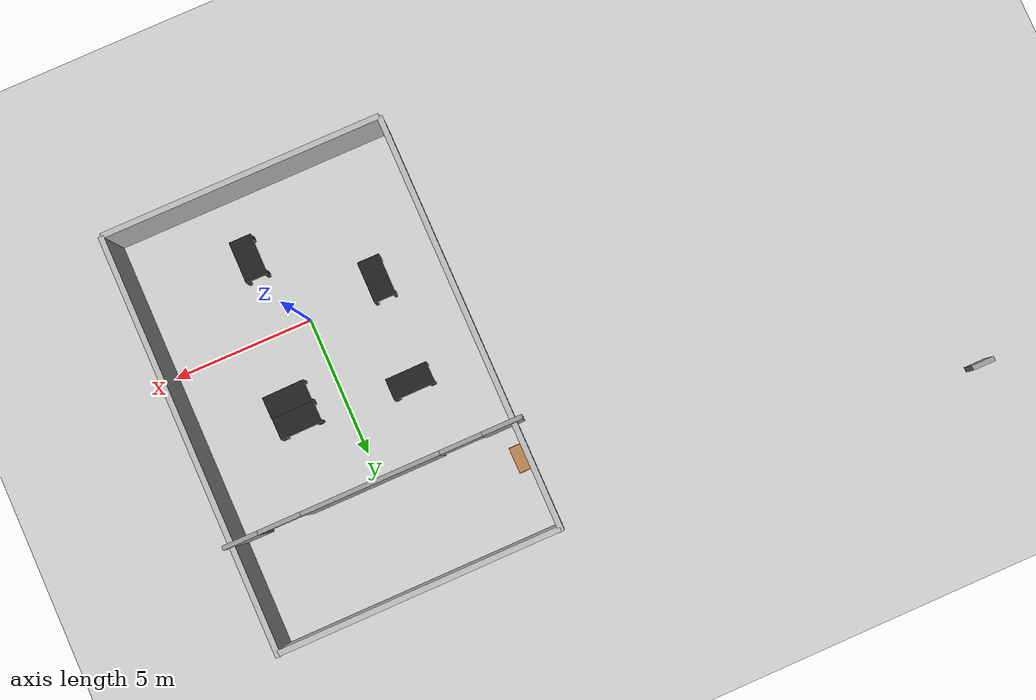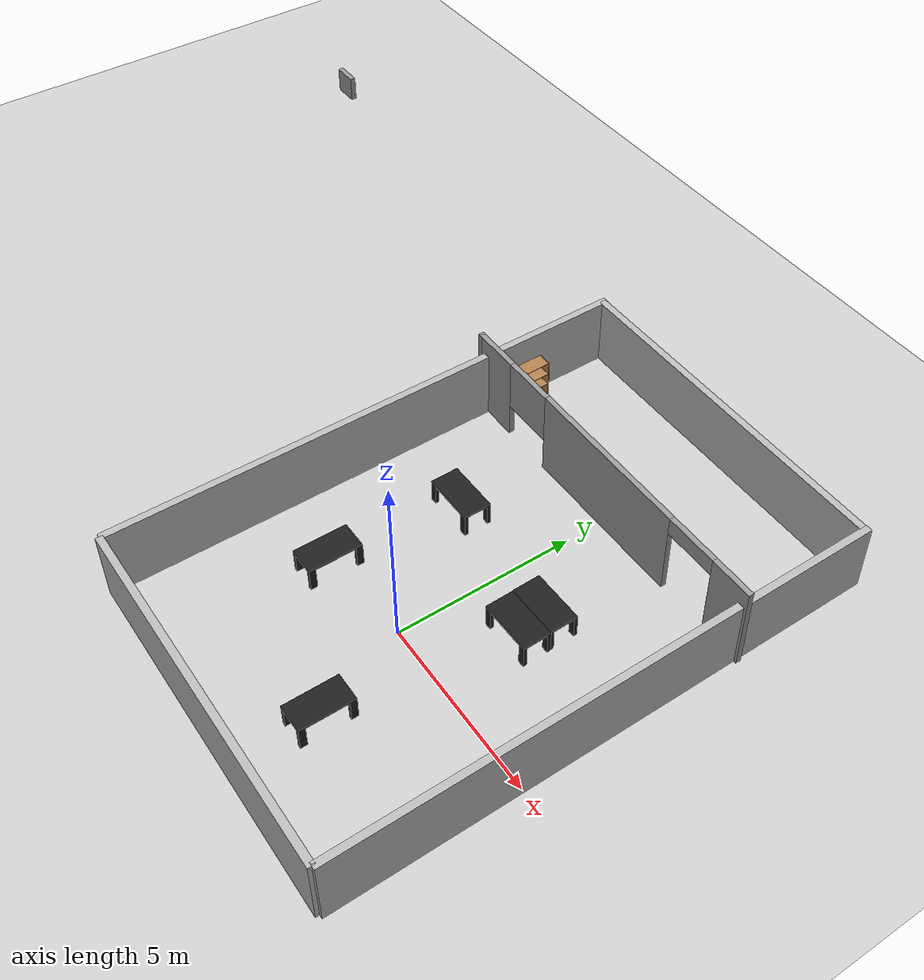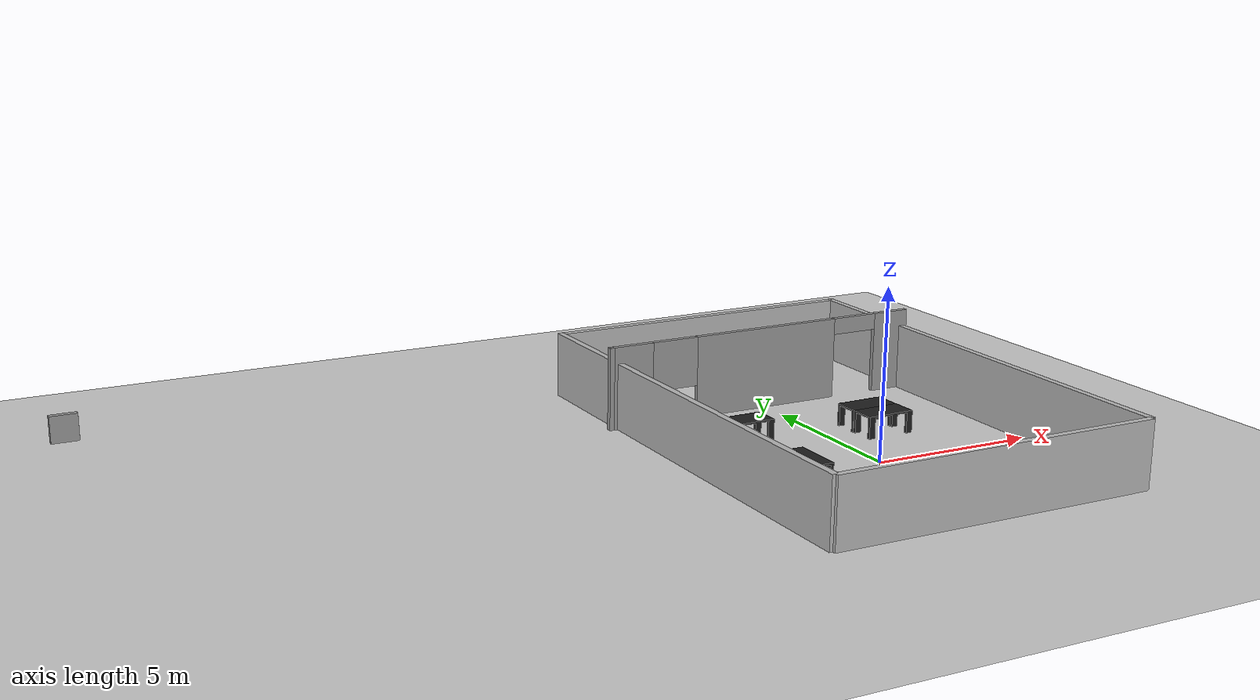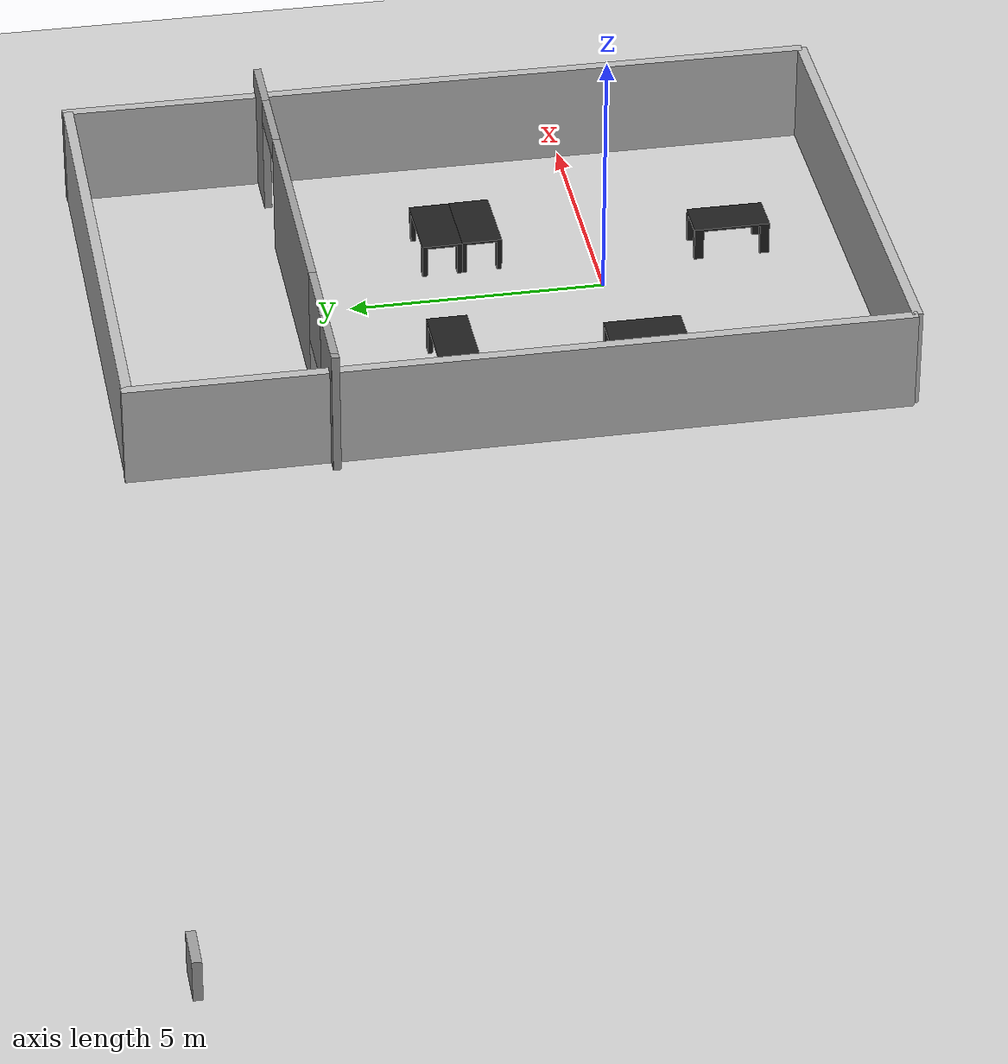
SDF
<sdf version="1.6">
 <world name="default">
  <physics name="default_physics" default="0" type="ode">
   <ode>
    <solver>
     <type>quick</type>
     <iters>20</iters>
     <sor>1</sor>
     <use_dynamic_moi_rescaling>0</use_dynamic_moi_rescaling>
    </solver>
    <constraints>
     <cfm>0</cfm>
     <erp>0.2</erp>
     <contact_max_correcting_vel>100</contact_max_correcting_vel>
     <contact_surface_layer>0</contact_surface_layer>
    </constraints>
   </ode>
   <real_time_update_rate>1000</real_time_update_rate>
   <max_step_size>0.001</max_step_size>
   <real_time_factor>1</real_time_factor>
  </physics>
  <light name="sun" type="directional">
   <pose>0 0 10 0 -0 0</pose>
   <diffuse>0.8 0.8 0.8 1</diffuse>
   <specular>0.1 0.1 0.1 1</specular>
   <attenuation>
    <range>1000</range>
    <constant>0.9</constant>
    <linear>0.01</linear>
    <quadratic>0.001</quadratic>
   </attenuation>
   <direction>-0.5 0.5 -1</direction>
  </light>
  <model name="ground_plane">
   <static>1</static>
   <link name="link">
    <collision name="collision">
     <geometry><plane><normal>0 0 1</normal><size>100 100</size></plane></geometry>
     <surface><friction><ode><mu>100</mu><mu2>50</mu2></ode></friction></surface>
    </collision>
    <visual name="visual">
     <cast_shadows>0</cast_shadows>
     <geometry><plane><normal>0 0 1</normal><size>100 100</size></plane></geometry>
     <material>
      <script><uri>file://media/materials/scripts/gazebo.material</uri><name>Gazebo/Grey</name></script>
     </material>
    </visual>
   </link>
  </model>
  <model name="wall_1_model">
   <pose>0 -5 1 0 -0 0</pose>
   <static>1</static>
   <link name="wall_1_body">
    <inertial>
     <mass>1</mass>
     <inertia><ixx>1</ixx><ixy>0</ixy><ixz>0</ixz><iyy>1</iyy><iyz>0</iyz><izz>1</izz></inertia>
    </inertial>
    <collision name="collision"><geometry><box><size>10 0.2 2</size></box></geometry></collision>
    <visual name="visual"><geometry><box><size>10 0.2 2</size></box></geometry></visual>
   </link>
  </model>
  <model name="wall_2_model">
   <pose>0 9.887 1 0 -0 0</pose>
   <static>1</static>
   <link name="wall_2_body">
    <inertial>
     <mass>1</mass>
     <inertia><ixx>1</ixx><ixy>0</ixy><ixz>0</ixz><iyy>1</iyy><iyz>0</iyz><izz>1</izz></inertia>
    </inertial>
    <collision name="collision"><geometry><box><size>10 0.2 2</size></box></geometry></collision>
    <visual name="visual"><geometry><box><size>10 0.2 2</size></box></geometry></visual>
   </link>
  </model>
  <model name="wall_3_model">
   <pose>-5 2.5 1 0 -0 0</pose>
   <static>1</static>
   <link name="wall_3_body">
    <inertial>
     <mass>1</mass>
     <inertia><ixx>1</ixx><ixy>0</ixy><ixz>0</ixz><iyy>1</iyy><iyz>0</iyz><izz>1</izz></inertia>
    </inertial>
    <collision name="collision"><geometry><box><size>0.2 15 2</size></box></geometry></collision>
    <visual name="visual"><geometry><box><size>0.2 15 2</size></box></geometry></visual>
   </link>
  </model>
  <model name="wall_4_model">
   <pose>5 2.5 1 0 -0 0</pose>
   <static>1</static>
   <link name="wall_4_body">
    <inertial>
     <mass>1</mass>
     <inertia><ixx>1</ixx><ixy>0</ixy><ixz>0</ixz><iyy>1</iyy><iyz>0</iyz><izz>1</izz></inertia>
    </inertial>
    <collision name="collision"><geometry><box><size>0.2 15 2</size></box></geometry></collision>
    <visual name="visual"><geometry><box><size>0.2 15 2</size></box></geometry></visual>
   </link>
  </model>
  <model name="kitchen_table">
   <static>1</static>
   <link name="link">
    <collision name="colision1">
     <geometry>
      <mesh><uri>model://kitchen_table/meshes/kitchen_table1.stl</uri><scale>1 1 1</scale></mesh>
     </geometry>
    </collision>
    <visual name="visual1">
     <geometry>
      <mesh><uri>model://kitchen_table/meshes/kitchen_table1.stl</uri><scale>1 1 1</scale></mesh>
     </geometry>
     <material>
      <script><uri>file://media/materials/scripts/gazebo.material</uri><name>Gazebo/FlatBlack</name></script>
     </material>
    </visual>
    <velocity_decay><linear>0</linear><angular>0</angular></velocity_decay>
   </link>
   <pose>0.620782 -3.43719 0 0 -0 0</pose>
  </model>
  <light name="male03light" type="point">
   <pose>3.6 0.53 1.6 0 -0 0</pose>
   <diffuse>0.5 0.5 0.5 1</diffuse>
   <specular>0.1 0.1 0.1 1</specular>
   <attenuation>
    <range>1</range>
    <linear>0.01</linear>
    <constant>0.3</constant>
    <quadratic>0</quadratic>
   </attenuation>
   <direction>0 0 -1</direction>
   <spot><inner_angle>0.6</inner_angle><outer_angle>0.8</outer_angle><falloff>1.2</falloff></spot>
   <cast_shadows>0</cast_shadows>
  </light>
  <light name="male03bislight" type="point">
   <pose>-2.9 3.7 1.5 0 -0 0</pose>
   <diffuse>0.5 0.5 0.5 1</diffuse>
   <specular>0.1 0.1 0.1 1</specular>
   <attenuation>
    <range>1</range>
    <linear>0.01</linear>
    <constant>0.3</constant>
    <quadratic>0</quadratic>
   </attenuation>
   <direction>0 0 -1</direction>
   <spot><inner_angle>0.6</inner_angle><outer_angle>0.8</outer_angle><falloff>1.2</falloff></spot>
   <cast_shadows>0</cast_shadows>
  </light>
  <gravity>0 0 -9.81</gravity>
  <magnetic_field>6e-06 2.3e-05 -4.2e-05</magnetic_field>
  <atmosphere type="adiabatic"/>
  <scene><ambient>0.4 0.4 0.4 1</ambient><background>0.7 0.7 0.7 1</background><shadows>1</shadows></scene>
  <spherical_coordinates>
   <surface_model>EARTH_WGS84</surface_model>
   <latitude_deg>0</latitude_deg>
   <longitude_deg>0</longitude_deg>
   <elevation>0</elevation>
   <heading_deg>0</heading_deg>
  </spherical_coordinates>
  <model name="kitchen_table_clone">
   <static>1</static>
   <link name="link">
    <collision name="colision1">
     <geometry>
      <mesh><uri>model://kitchen_table/meshes/kitchen_table1.stl</uri><scale>1 1 1</scale></mesh>
     </geometry>
    </collision>
    <visual name="visual1">
     <geometry>
      <mesh><uri>model://kitchen_table/meshes/kitchen_table1.stl</uri><scale>1 1 1</scale></mesh>
     </geometry>
     <material>
      <script><uri>file://media/materials/scripts/gazebo.material</uri><name>Gazebo/FlatBlack</name></script>
     </material>
    </visual>
    <velocity_decay><linear>0</linear><angular>0</angular></velocity_decay>
   </link>
   <pose>-3.09779 -1.05166 0 0 -0 0</pose>
  </model>
  <model name="kitchen_table_clone_0">
   <static>1</static>
   <link name="link">
    <collision name="colision1">
     <geometry>
      <mesh><uri>model://kitchen_table/meshes/kitchen_table1.stl</uri><scale>1 1 1</scale></mesh>
     </geometry>
    </collision>
    <visual name="visual1">
     <geometry>
      <mesh><uri>model://kitchen_table/meshes/kitchen_table1.stl</uri><scale>1 1 1</scale></mesh>
     </geometry>
     <material>
      <script><uri>file://media/materials/scripts/gazebo.material</uri><name>Gazebo/FlatBlack</name></script>
     </material>
    </visual>
    <velocity_decay><linear>0</linear><angular>0</angular></velocity_decay>
   </link>
   <pose>-3.10657 3.77787 0 0 0 -1.5658</pose>
  </model>
  <model name="kitchen_table_clone_1">
   <static>1</static>
   <link name="link">
    <collision name="colision1">
     <geometry>
      <mesh><uri>model://kitchen_table/meshes/kitchen_table1.stl</uri><scale>1 1 1</scale></mesh>
     </geometry>
    </collision>
    <visual name="visual1">
     <geometry>
      <mesh><uri>model://kitchen_table/meshes/kitchen_table1.stl</uri><scale>1 1 1</scale></mesh>
     </geometry>
     <material>
      <script><uri>file://media/materials/scripts/gazebo.material</uri><name>Gazebo/FlatBlack</name></script>
     </material>
    </visual>
    <velocity_decay><linear>0</linear><angular>0</angular></velocity_decay>
   </link>
   <pose>0.931018 2.66211 0 0 0 -1.5569</pose>
  </model>
  <model name="kitchen_table_clone_1_clone">
   <static>1</static>
   <link name="link">
    <collision name="colision1">
     <geometry>
      <mesh><uri>model://kitchen_table/meshes/kitchen_table1.stl</uri><scale>1 1 1</scale></mesh>
     </geometry>
    </collision>
    <visual name="visual1">
     <geometry>
      <mesh><uri>model://kitchen_table/meshes/kitchen_table1.stl</uri><scale>1 1 1</scale></mesh>
     </geometry>
     <material>
      <script><uri>file://media/materials/scripts/gazebo.material</uri><name>Gazebo/FlatBlack</name></script>
     </material>
    </visual>
    <velocity_decay><linear>0</linear><angular>0</angular></velocity_decay>
   </link>
   <pose>0.909543 3.44925 0 0 0 -1.5569</pose>
  </model>
  <model name="bookshelf">
   <static>1</static>
   <link name="link">
    <inertial><mass>1</mass></inertial>
    <collision name="back">
     <pose>0 0.005 0.6 0 -0 0</pose>
     <geometry><box><size>0.9 0.01 1.2</size></box></geometry>
    </collision>
    <visual name="visual1">
     <pose>0 0.005 0.6 0 -0 0</pose>
     <geometry><box><size>0.9 0.01 1.2</size></box></geometry>
     <material>
      <script><uri>file://media/materials/scripts/gazebo.material</uri><name>Gazebo/Wood</name></script>
     </material>
    </visual>
    <collision name="left_side">
     <pose>0.45 -0.195 0.6 0 -0 0</pose>
     <geometry><box><size>0.02 0.4 1.2</size></box></geometry>
    </collision>
    <visual name="visual2">
     <pose>0.45 -0.195 0.6 0 -0 0</pose>
     <geometry><box><size>0.02 0.4 1.2</size></box></geometry>
     <material>
      <script><uri>file://media/materials/scripts/gazebo.material</uri><name>Gazebo/Wood</name></script>
     </material>
    </visual>
    <collision name="right_side">
     <pose>-0.45 -0.195 0.6 0 -0 0</pose>
     <geometry><box><size>0.02 0.4 1.2</size></box></geometry>
    </collision>
    <visual name="visual3">
     <pose>-0.45 -0.195 0.6 0 -0 0</pose>
     <geometry><box><size>0.02 0.4 1.2</size></box></geometry>
     <material>
      <script><uri>file://media/materials/scripts/gazebo.material</uri><name>Gazebo/Wood</name></script>
     </material>
    </visual>
    <collision name="bottom">
     <pose>0 -0.195 0.03 0 -0 0</pose>
     <geometry><box><size>0.88 0.4 0.06</size></box></geometry>
    </collision>
    <visual name="visual4">
     <pose>0 -0.195 0.03 0 -0 0</pose>
     <geometry><box><size>0.88 0.4 0.06</size></box></geometry>
     <material>
      <script><uri>file://media/materials/scripts/gazebo.material</uri><name>Gazebo/Wood</name></script>
     </material>
    </visual>
    <collision name="top">
     <pose>0 -0.195 1.19 0 -0 0</pose>
     <geometry><box><size>0.88 0.4 0.02</size></box></geometry>
    </collision>
    <visual name="visual5">
     <pose>0 -0.195 1.19 0 -0 0</pose>
     <geometry><box><size>0.88 0.4 0.02</size></box></geometry>
     <material>
      <script><uri>file://media/materials/scripts/gazebo.material</uri><name>Gazebo/Wood</name></script>
     </material>
    </visual>
    <collision name="low_shelf">
     <pose>0 -0.195 0.43 0 -0 0</pose>
     <geometry><box><size>0.88 0.4 0.02</size></box></geometry>
    </collision>
    <visual name="visual6">
     <pose>0 -0.195 0.43 0 -0 0</pose>
     <geometry><box><size>0.88 0.4 0.02</size></box></geometry>
     <material>
      <script><uri>file://media/materials/scripts/gazebo.material</uri><name>Gazebo/Wood</name></script>
     </material>
    </visual>
    <collision name="high_shelf">
     <pose>0 -0.195 0.8 0 -0 0</pose>
     <geometry><box><size>0.88 0.4 0.02</size></box></geometry>
    </collision>
    <visual name="visual7">
     <pose>0 -0.195 0.8 0 -0 0</pose>
     <geometry><box><size>0.88 0.4 0.02</size></box></geometry>
     <material>
      <script><uri>file://media/materials/scripts/gazebo.material</uri><name>Gazebo/Wood</name></script>
     </material>
    </visual>
   </link>
   <pose>-4.88799 7.25814 0 0 -0 1.57996</pose>
  </model>
  <model name="varying_doors1">
   <pose>-0.089768 6.06596 0 0 -0 0</pose>
   <link name="Wall_7">
    <pose>0.01315 0 0 0 -0 3.14159</pose>
    <visual name="Wall_7_Visual_0">
     <pose>-4.64084 0 1.25 0 -0 0</pose>
     <geometry><box><size>1.21832 0.15 2.5</size></box></geometry>
     <material>
      <script><uri>file://media/materials/scripts/gazebo.material</uri><name>Gazebo/Grey</name></script>
      <ambient>1 1 1 1</ambient>
     </material>
    </visual>
    <collision name="Wall_7_Collision_0">
     <geometry><box><size>1.21832 0.15 2.5</size></box></geometry>
     <pose>-4.64084 0 1.25 0 -0 0</pose>
    </collision>
    <visual name="Wall_7_Visual_1">
     <pose>-0.099298 0 1.25 0 -0 0</pose>
     <geometry><box><size>4.86476 0.15 2.5</size></box></geometry>
     <material>
      <script><uri>file://media/materials/scripts/gazebo.material</uri><name>Gazebo/Grey</name></script>
      <ambient>1 1 1 1</ambient>
     </material>
    </visual>
    <collision name="Wall_7_Collision_1">
     <geometry><box><size>4.86476 0.15 2.5</size></box></geometry>
     <pose>-0.099298 0 1.25 0 -0 0</pose>
    </collision>
    <visual name="Wall_7_Visual_2">
     <pose>4.54154 0 1.25 0 -0 0</pose>
     <geometry><box><size>1.41692 0.15 2.5</size></box></geometry>
     <material>
      <script><uri>file://media/materials/scripts/gazebo.material</uri><name>Gazebo/Grey</name></script>
      <ambient>1 1 1 1</ambient>
     </material>
    </visual>
    <collision name="Wall_7_Collision_2">
     <geometry><box><size>1.41692 0.15 2.5</size></box></geometry>
     <pose>4.54154 0 1.25 0 -0 0</pose>
    </collision>
    <visual name="Wall_7_Visual_3">
     <pose>3.08308 0 1.75 0 -0 0</pose>
     <geometry><box><size>1.5 0.15 1.5</size></box></geometry>
     <material>
      <script><uri>file://media/materials/scripts/gazebo.material</uri><name>Gazebo/Grey</name></script>
      <ambient>1 1 1 1</ambient>
     </material>
    </visual>
    <collision name="Wall_7_Collision_3">
     <geometry><box><size>1.5 0.15 1.5</size></box></geometry>
     <pose>3.08308 0 1.75 0 -0 0</pose>
    </collision>
    <visual name="Wall_7_Visual_4">
     <pose>-3.28168 0 2.25 0 -0 0</pose>
     <geometry><box><size>1.5 0.15 0.5</size></box></geometry>
     <material>
      <script><uri>file://media/materials/scripts/gazebo.material</uri><name>Gazebo/Grey</name></script>
      <ambient>1 1 1 1</ambient>
     </material>
    </visual>
    <collision name="Wall_7_Collision_4">
     <geometry><box><size>1.5 0.15 0.5</size></box></geometry>
     <pose>-3.28168 0 2.25 0 -0 0</pose>
    </collision>
   </link>
   <link name="Wall_8">
    <collision name="Wall_8_Collision">
     <geometry><box><size>0.15 0.15 2.5</size></box></geometry>
     <pose>0 0 1.25 0 -0 0</pose>
    </collision>
    <visual name="Wall_8_Visual">
     <pose>0 0 1.25 0 -0 0</pose>
     <geometry><box><size>0.15 0.15 2.5</size></box></geometry>
     <material>
      <script><uri>file://media/materials/scripts/gazebo.material</uri><name>Gazebo/Grey</name></script>
      <ambient>1 1 1 1</ambient>
     </material>
    </visual>
    <pose>-5.18815 0 0 0 -0 0</pose>
   </link>
   <link name="Window_1">
    <collision name="Window_1_Collision">
     <geometry><box><size>0.8 0.17 0.8</size></box></geometry>
     <pose>0 0 0.4 0 -0 0</pose>
    </collision>
    <visual name="Window_1_Visual">
     <pose>0 0 0.4 0 -0 0</pose>
     <geometry><box><size>0.8 0.17 0.8</size></box></geometry>
     <material>
      <script><uri>file://media/materials/scripts/gazebo.material</uri><name>Gazebo/Grey</name></script>
     </material>
    </visual>
    <pose>-20.0075 4.53429 0.5 0 -0 0</pose>
   </link>
   <static>1</static>
  </model>
 </world>
</sdf>
